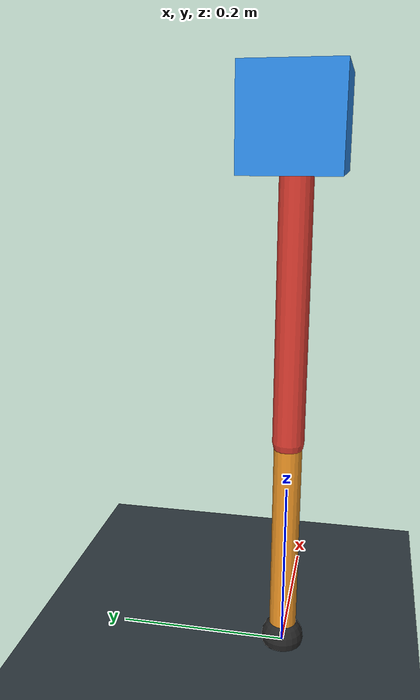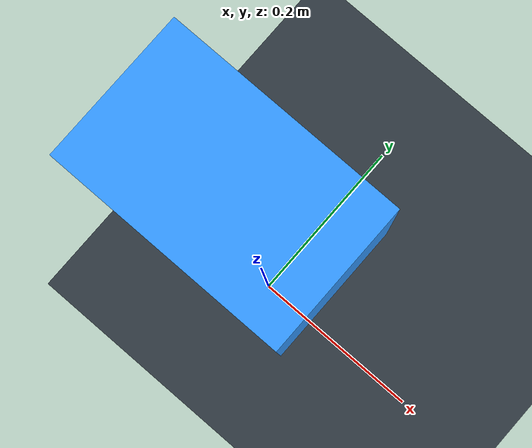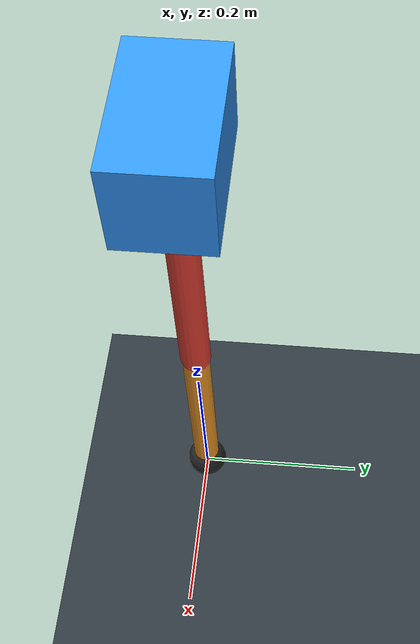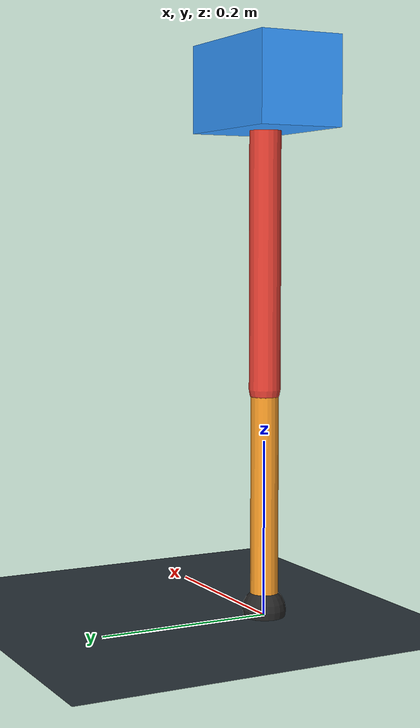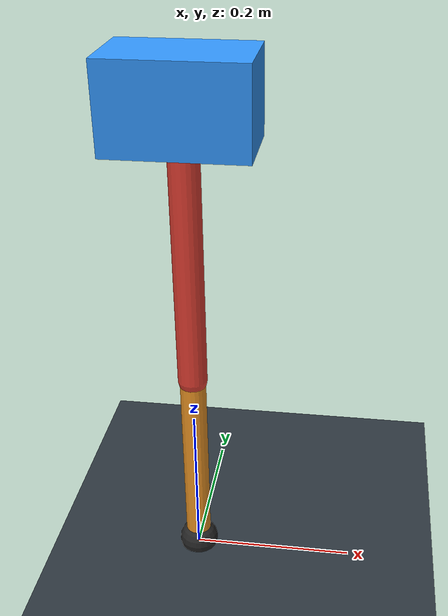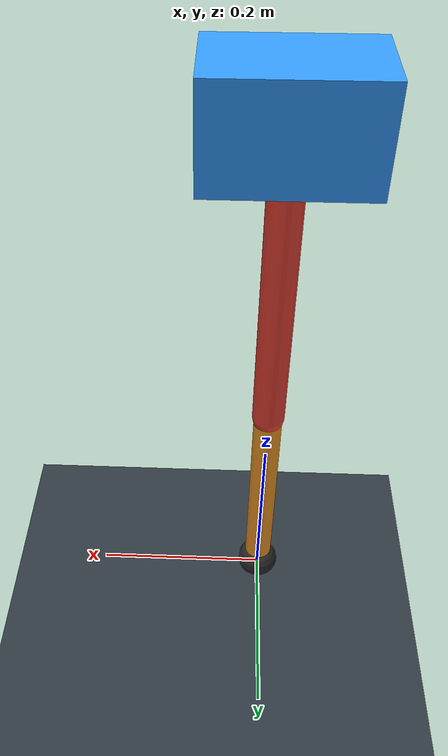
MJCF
<mujoco model="single_axis_two_bar">
  <compiler angle="radian" inertiafromgeom="true"/>
  <option timestep="0.001" integrator="implicitfast" gravity="0 0 -9.81"/>
  <default>
    <joint damping="0.08"/>
    <geom friction="1.2 0.01 0.0001" condim="3"/>
  </default>
  <worldbody>
    <geom name="floor" type="plane" size="5 5 0.1" rgba="0.18 0.22 0.25 1"/>
    <body name="carriage" pos="0 0 0.5999022010721692">
      <joint name="pole_slide" type="slide" axis="0 0 1"/>
      <geom name="payload" type="box" size="0.08 0.05 0.05" mass="3.8826403111546828" rgba="0.2 0.6 1 1"/>
      <body name="thigh" pos="0 0 0">
        <joint name="hip" type="hinge" axis="0 1 0"/>
        <geom name="thigh_link" type="capsule" fromto="0 0 0 0 0 -0.3411750559791586" size="0.018" mass="0.24309173561576142" rgba="0.9 0.25 0.2 1"/>
        <body name="shank" pos="0 0 -0.3411750559791586">
          <joint name="knee" type="hinge" axis="0 1 0"/>
          <geom name="shank_link" type="capsule" fromto="0 0 0 0 0 -0.2515076255385416" size="0.016" mass="0.179202506576266" rgba="0.95 0.6 0.15 1"/>
          <geom name="foot" type="sphere" pos="0 0 -0.2515076255385416" size="0.025" mass="0.03" rgba="0.15 0.15 0.15 1"/>
          <site name="toe" pos="0 0 -0.2515076255385416" size="0.008"/>
        </body>
      </body>
    </body>
  </worldbody>
  <actuator>
    <motor name="hip_motor" joint="hip" ctrlrange="-36.18453488025271 36.18453488025271"/>
    <motor name="knee_motor" joint="knee" ctrlrange="-161.26233394167784 161.26233394167784"/>
  </actuator>
</mujoco>
